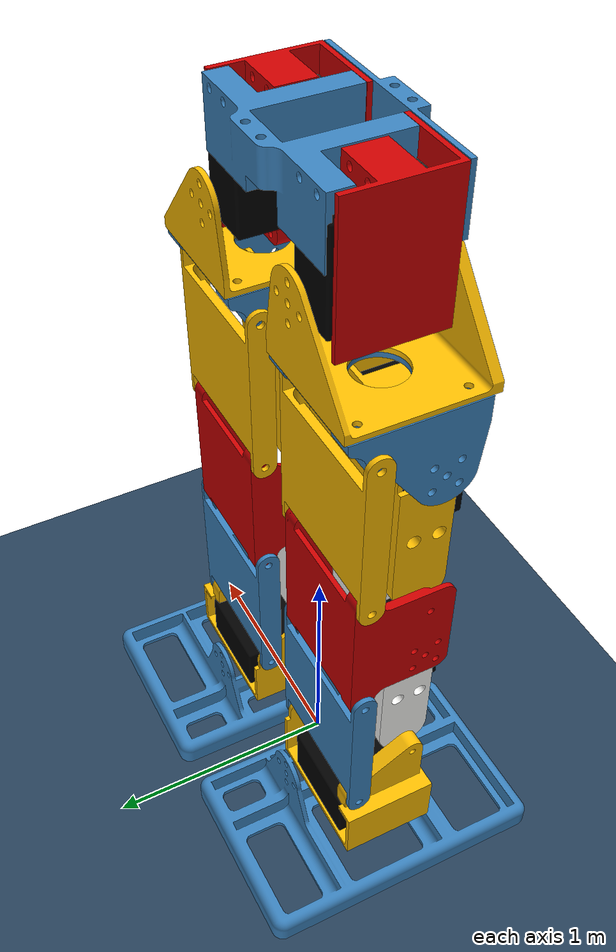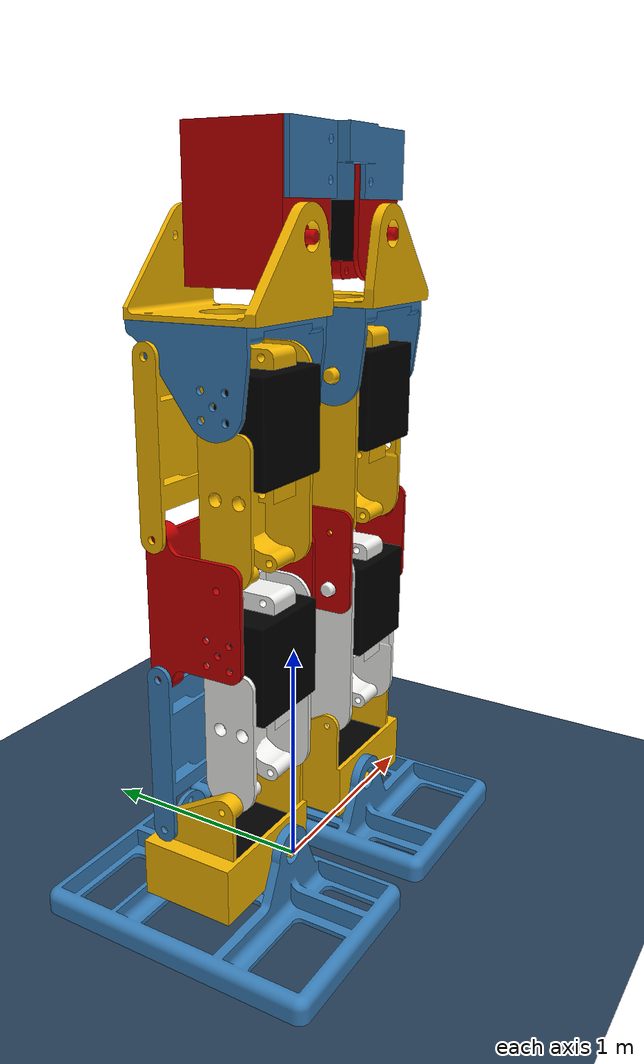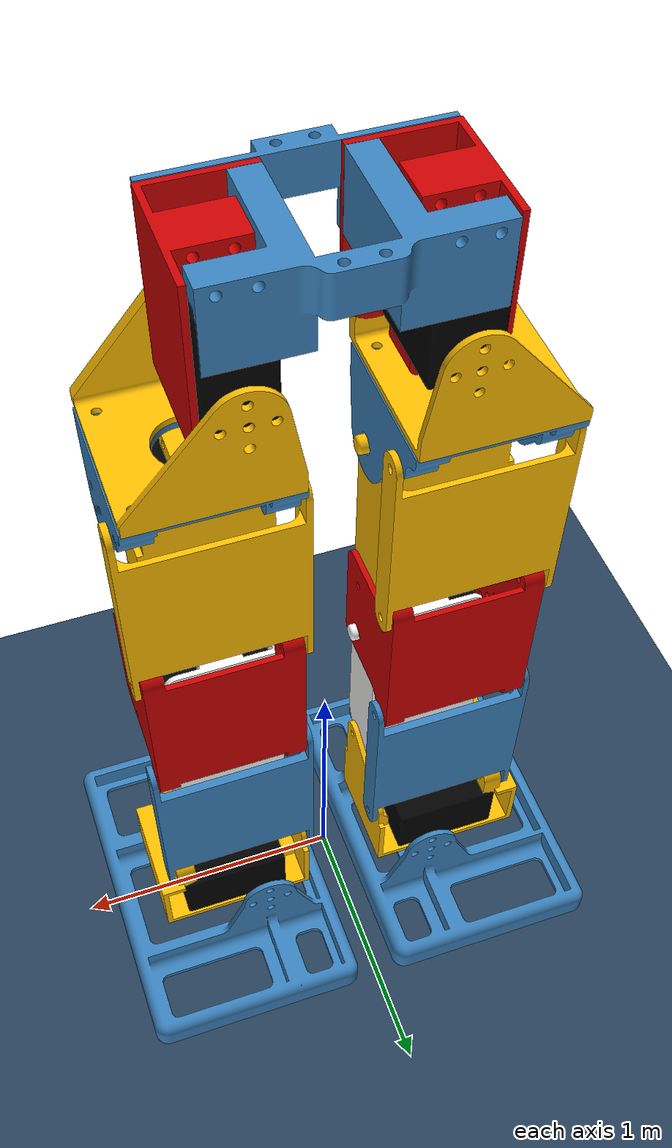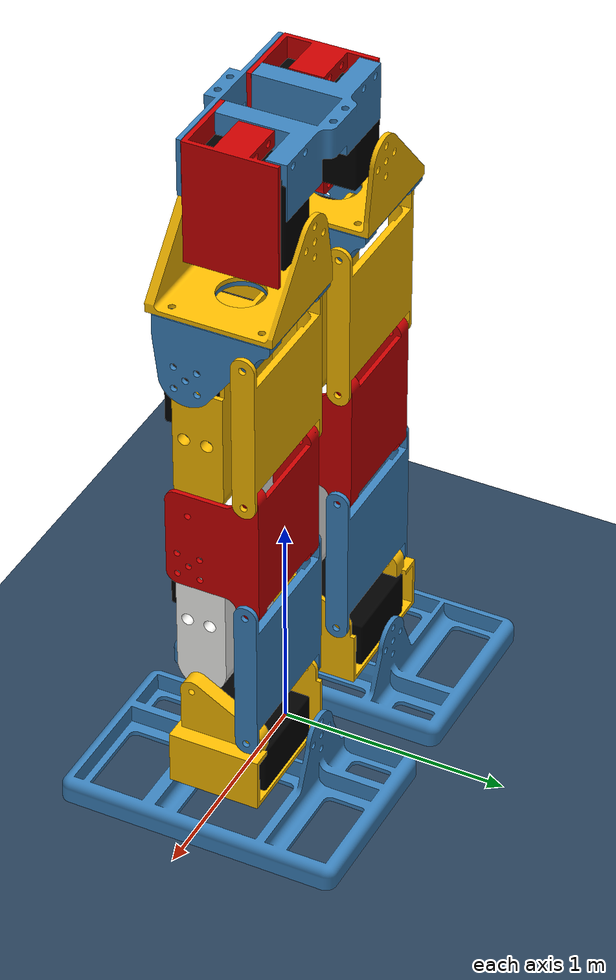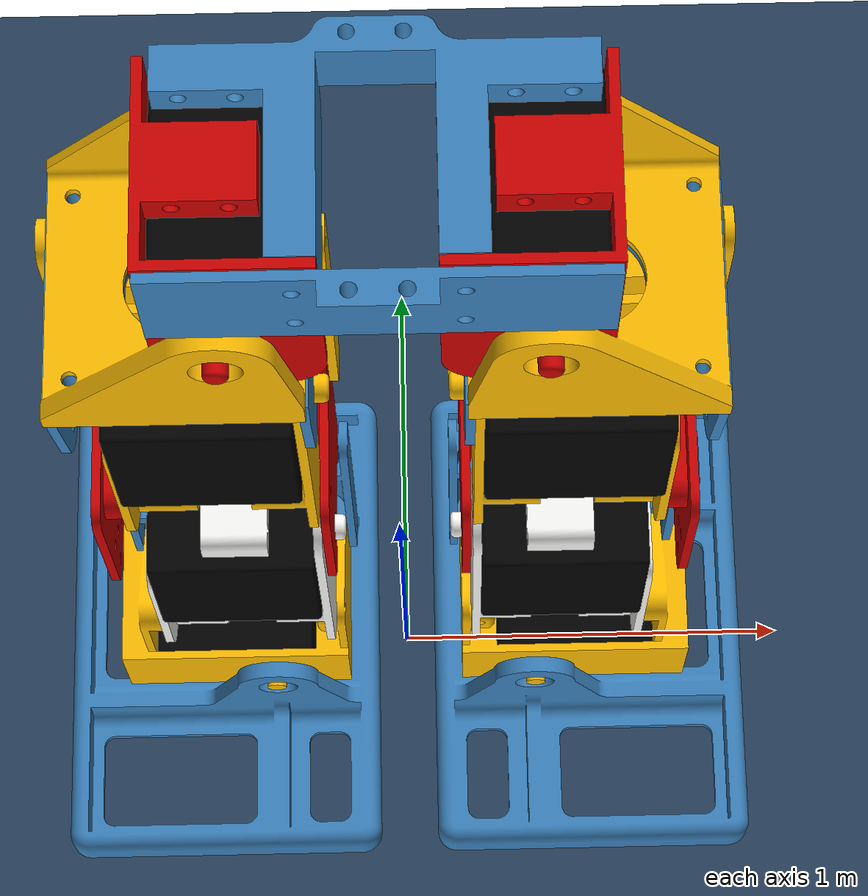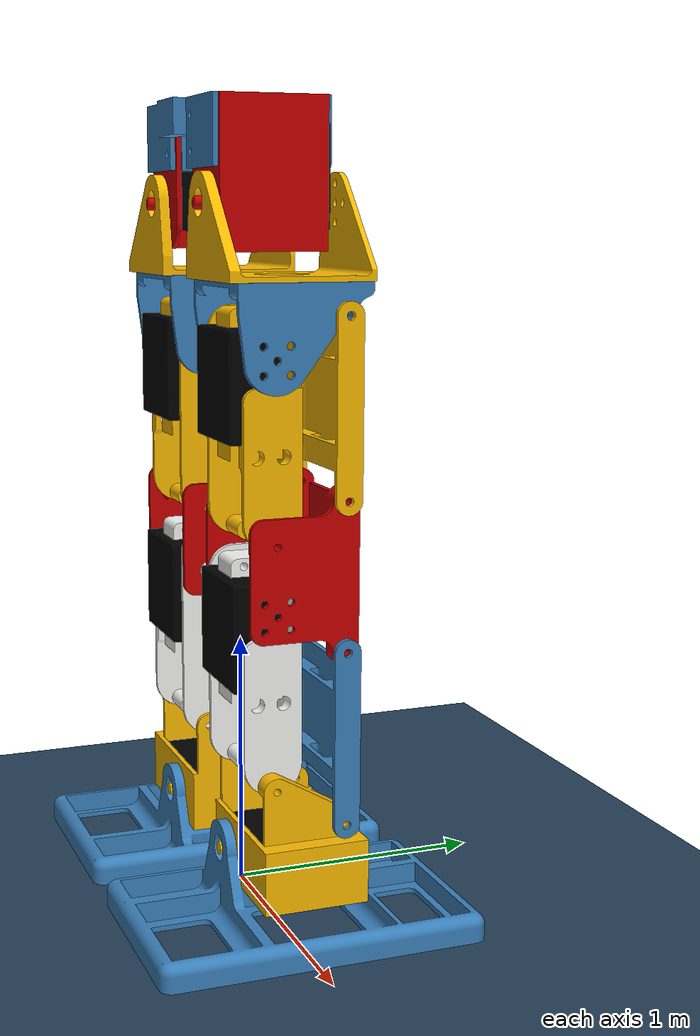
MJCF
<mujoco model="Kayra">
  <option gravity="0 0 -9.81"/>
   <compiler angle="degree"/>

<default>
  <mesh scale="0.01 0.01 0.01"/>
  <!--geom type="mesh" solref="0.005 1"/-->
  <!--position kp="21.1" ctrlrange="-3.141592 3.141592" forcerange="-5 5"/-->
  <joint armature="0.01" damping=".1" limited="true"/>
  <geom conaffinity="0" condim="3" contype="1" type="mesh" />

</default>

  <asset>
    <texture name="grid" type="2d" builtin="checker" width="512" height="512" rgb1=".1 .2 .3" rgb2=".2 .3 .4"/>
    <material name="blue" rgba="0.23 0.51 0.74 1"/>
    <material name="yellow" rgba="0.99 0.74 0.0 1"/>
    <material name="white" rgba="0.98 0.98 0.97 1"/>
	<material name="red" rgba="0.80 0.0 0.0 1"/>
    <material name="black" rgba="0.0 0.0 0.0 1"/>

    <material name="grid" texture="grid" texrepeat="1 1" texuniform="true" reflectance=".2"/>

    <mesh name="servoBlock" file="../STL/servoBlock-Body.stl"/>
    <mesh name="1R_foot" file="../STL/1R_foot_bearing-BodySketch.stl"/>
    <mesh name="1L_foot" file="../STL/1L_foot_bearing-BodySketch.stl"/>

    <mesh name="2R_footJoint" file="../STL/2R_footJoint_bearing-Body.stl"/>
    <mesh name="2L_footJoint" file="../STL/2L_footJoint_bearing-Body.stl"/>

    <mesh name="3BR_calf" file="../STL/3BR_calf-Body.stl"/>
    <mesh name="3BL_calf" file="../STL/3BL_calf-Body.stl"/>
    <mesh name="3FU_shin" file="../STL/3FU_shin-Body.stl"/>

    <mesh name="4R_knee" file="../STL/4R_knee-Body.stl"/>
    <mesh name="4L_knee" file="../STL/4L_knee-Body.stl"/>

	<mesh name="5R_hipjoint_lower" file="../STL/5R_hipjoint_lower-Body.stl"/>
	<mesh name="5L_hipjoint_lower" file="../STL/5L_hipjoint_lower-Body.stl"/>
    <mesh name="5R_hipjoint_upper" file="../STL/5R_hipjoint_upper_bearing-Body.stl"/>
    <mesh name="5L_hipjoint_upper" file="../STL/5L_hipjoint_upper_bearing-Body.stl"/>

    <mesh name="6F_hipfront" file="../STL/6F_hipfront-Body.stl"/>
	<mesh name="6F_hipback" file="../STL/6F_hipback-Body.stl"/>
	<mesh name="6R_hip" file="../STL/6R_hip_bearing-Body.stl"/>
	<mesh name="6L_hip" file="../STL/6L_hip_bearing-Body.stl"/>
  </asset>

  <worldbody>
   <camera name="follow" pos="-2.0 2.0 3" xyaxes="-1.0 -1 0 1.0 0 1" mode="trackcom"/>

    <light directional="true" pos="-0.5 0.5 3" dir="0 0 -1" />
    <geom name="floor" size="0 0 .05" type="plane" material="grid" conaffinity="1" condim="3"/>

    <body name="6Hip_Link" pos="-0.0 0.0 2.975" euler= "90 0.0 0.0">
        <joint type="free"/>

        <!--inertial pos="0 0 0.1" mass="0.10" diaginertia="0.005 0.005 0.005"/-->
        <geom mesh="6F_hipfront" type="mesh" pos="0.0 -0.043 -0.215" euler="90 180.0 180.0" material="blue" conaffinity="2"/>
        <geom mesh="6F_hipback" type="mesh" pos="0.0 -0.043 0.215" euler="90 180.0 180" material="blue" conaffinity="2"/>
        <geom mesh="6R_hip" type="mesh" pos="-0.425 -0.19 -0.001" euler="0.0 90 -90" material="red" conaffinity="2"/>
		<geom mesh="servoBlock" type="mesh" euler="90 0 90" pos="-0.3 -0.01 -0.01" mass="67.0" material="black" conaffinity="2"/>
		<geom mesh="6L_hip" type="mesh" pos="0.425 -0.19 -0.001" euler="0.0 90 -90" material="red" conaffinity="2"/>
		<geom mesh="servoBlock" type="mesh" euler="90 0 90" pos="0.3 -0.01 -0.01" mass="67.0" material="black" conaffinity="2"/>

		<body name="5R_Link" pos="-0.735 -0.525 -0.195" euler= "0 0 0">
			<joint name="5R_Joint" axis="0 0 -1" range="-180 180" pos="0.43 0.235 0.18"/>

			<!--inertial pos="0 0 0.1" mass="0.10" diaginertia="0.005 0.005 0.005"/-->
			<geom mesh="5R_hipjoint_upper" type="mesh" euler= "0.0 0 -0.0" pos="0.33 -0.015 0.17" material="yellow" conaffinity="3"/>
			<geom mesh="5R_hipjoint_lower" type="mesh" euler= "90.0 180 -0.0" pos="0.33 -0.055 0.17"  material="blue" conaffinity="3"/>

			<body name="3BRU_Link" pos="0.25 -0.39 0.17" euler="0.0 0 -90">
				<joint name="3BRU_Joint" axis="0 -1 0" range="-180 180" pos="-0.09 0.1 0.11"/>

				<!--inertial pos="0 0 0" mass="0.10" diaginertia="0.005 0.005 0.005"/-->
				<geom mesh="3BR_calf" type="mesh" euler="0 0 180" pos="0.1125 0.105 -0.01" material="yellow" conaffinity="3"/>
				<geom mesh="servoBlock" type="mesh" euler="90 0 0" pos="0.01 0.295 0.15" mass="67.0" material="black" conaffinity="3"/>

				<body name="4R_Link" pos="0.675 0.0 -0.18" euler= "0.0 -90 90">
					<joint name="4R_Joint" axis="-1 0 0" range="-180 180" pos="-0.10 -0.31 0.13"/>

					<!--inertial pos="0 0 0.1" mass="0.10" diaginertia="0.005 0.005 0.005"/-->
					<geom mesh="4R_knee" type="mesh" material="red" pos="0.08 0.02 -0.01" euler="0 180 0" conaffinity="3"/>

					<body name="3BR_Link" pos="0 -0.17 -0.225" euler="90 0 -90">
						<joint name="3BR_Joint" axis="0 -1 0" range="-180 180" pos="-0.10 -0.06 0.14"/>

						<!--inertial pos="0 0 0" mass="0.10" diaginertia="0.005 0.005 0.005"/-->
						<geom mesh="3BR_calf" type="mesh" euler="0 0 180" pos="0.112 0.105 0.0" material="white" conaffinity="3"/>
						<geom mesh="servoBlock" type="mesh" euler="90 0 0" pos="0.01 0.295 0.15" material="black" conaffinity="3"/>

						<body name="2R_Link" pos="1.0 -0.3 0.2" euler= "0 -90 90">
							<joint name="2R_Joint" axis="-1 0 0" range="-180 180" pos="0.23 0.05 0.45"/>

							<!--inertial pos="0 0 0.1" mass="0.05" diaginertia="0.005 0.005 0.005"/-->
							<geom mesh="2R_footJoint" type="mesh" pos="0.075 0.01 0.0" material="yellow" conaffinity="3"/>
							<geom mesh="servoBlock" type="mesh" euler="90 0 0" pos="0.345 0.40 0.12" material="black" conaffinity="3"/>

							<body name="3FUR_Link" pos="0.3 0.35 0.62" euler="-90 0 0">
								<joint name="3FUR_Joint" axis="-1 0 0" range="-180 180" pos="-0.03 0.33 -0.02"/>

								<!--nertial pos="0 0 0" mass="0.05" diaginertia="0.005 0.005 0.005"/-->
								<geom mesh="3FU_shin" type="mesh" euler="90 0 90" pos="0.08 0.005 -0.25" material="blue" conaffinity="3"/>
							</body>

							<body name="1R_Link" pos="0.3 0.2 -0.15" euler="0 0 0.0">
								<joint name="1R_Joint" axis="0 1 0" range="-180 180" pos="0.15 -0.07 0.27"/>
								<!--inertial pos="0 0 0" mass="0.05" diaginertia="0.005 0.005 0.005"/-->
								<geom mesh="1R_foot" type="mesh" euler="0 0 0" pos="0.0 0.0 0.0" material="blue" conaffinity="3"/>
							</body>
						</body>

					</body>

					<body name="3FURU_Link" pos="0.0 -0.020 0.60" euler="-90 0 0">
						<joint name="3FURU_Joint" axis="-1 0 0" range="-180 180" pos="-0.04 0.325 -0.03"/>

						<inertial pos="0 0 0" mass="0.05" diaginertia="0.005 0.005 0.005"/>
						<geom mesh="3FU_shin" type="mesh" euler="90 0 90" pos="0.08 0.0095 -0.25" material="yellow" conaffinity="3"/>
					</body>

				</body>

			</body>
		</body>

		<body name="5L_Link" pos="0.735 -0.525 -0.195" euler= "0 0.0 -0.0">
			<joint name="5L_Joint" axis="0 0 -1" range="-180 180" pos="-0.43 0.235 0.18"/>

			<!--inertial pos="0 0 0.1" mass="0.10" diaginertia="0.005 0.005 0.005"/-->
			<geom mesh="5L_hipjoint_upper" type="mesh" pos="-0.33 -0.015 0.17" euler= "0.0 0 -0.0" material="yellow" conaffinity="4"/>
			<geom mesh="5L_hipjoint_lower" type="mesh" pos="-0.33 -0.055 0.17"  euler= "90.0 180 -0.0" material="blue" conaffinity="4"/>

			<body name="3BLU_Link" pos="-0.25 -0.39 0.17" euler="0.0 0 -90">
				<joint name="3BLU_Joint" axis="0 1 0" range="-180 180" pos="-0.09 -0.1 0.11"/>

				<!--inertial pos="0 0 0" mass="0.10" diaginertia="0.005 0.005 0.005"/-->
				<geom mesh="3BL_calf" type="mesh" euler="180 180 0" pos="0.1125 -0.105 -0.01" material="yellow" conaffinity="4"/>
				<geom mesh="servoBlock" type="mesh" euler="90 0 0" pos="0.01 0.085 0.15" mass="67.0" material="black" conaffinity="4"/>

				<body name="4L_Link" pos="0.675 0 -0.18" euler= "0.0 -90 90">
					<joint name="4L_Joint" axis="1 0 0" range="-180 180" pos="0.1 -0.31 0.13"/>

					<!--inertial pos="0 0 0.1" mass="0.10" diaginertia="0.005 0.005 0.005"/-->
					<geom mesh="4L_knee" type="mesh" material="red" pos="-0.08 0.02 -0.01" euler= "0.0 180 0" conaffinity="4"/>

					<body name="3BL_Link" pos="0 -0.17 -0.225" euler="90 0 -90">
						<joint name="3BL_Joint" axis="0 1 0" range="-180 180" pos="-0.10 0.06 0.14"/>

						<!--inertial pos="0 0 0" mass="0.10" diaginertia="0.005 0.005 0.005"/-->
						<geom mesh="3BL_calf" type="mesh" euler="0 0 180" pos="0.112 -0.105 0.0" material="white" conaffinity="4"/>
						<geom mesh="servoBlock" type="mesh" euler="90 0 0" pos="0.01 0.085 0.15" mass="67.0" material="black" conaffinity="4"/>

						<body name="2L_Link" pos="1.0 0.3 0.2" euler= "0 -90 90">
							<joint name="2L_Joint" axis="1 0 0" range="-180 180" pos="-0.23 0.05 0.45"/>

							<!--inertial pos="0 0 0.1" mass="0.05" diaginertia="0.005 0.005 0.005"/-->
							<geom mesh="2L_footJoint" type="mesh" pos="-0.075 0.01 0.0" material="yellow" conaffinity="4"/>
							<geom mesh="servoBlock" type="mesh" euler="90 0 0" pos="-0.345 0.40 0.115" material="black" conaffinity="4"/>

							<body name="3FUL_Link" pos="-0.3 0.35 0.62" euler="-90 0 0">
								<joint name="3FUL_Joint" axis="1 0 0" range="-180 180" pos="0.03 0.33 -0.02"/>

								<!--inertial pos="0 0 0" mass="0.05" diaginertia="0.005 0.005 0.005"/-->
								<geom mesh="3FU_shin" type="mesh" euler="90 0 90" pos="-0.08 0.005 -0.25" material="blue" conaffinity="4"/>
							</body>

							<body name="1L_Link" pos="-0.3 0.2 -0.15" euler="0 0 0.0">
								<joint name="1L_Joint" axis="0 1 0" range="-180 180" pos="-0.15 -0.07 0.27"/>
								<!--inertial pos="0 0 0" mass="0.05" diaginertia="0.005 0.005 0.005"/-->
								<geom mesh="1L_foot" type="mesh" euler="0 0 0" pos="0.0 0.0 0.0" material="blue" conaffinity="4"/>
							</body>
						</body>

					</body>

					<body name="3FULU_Link" pos="0.0 -0.020 0.60" euler="-90 0 0">
						<joint name="3FULU_Joint" axis="1 0 0" range="-180 180" pos="0.04 0.325 -0.03"/>

						<!--inertial pos="0 0 0" mass="0.05" diaginertia="0.005 0.005 0.005"/-->
						<geom mesh="3FU_shin" type="mesh" euler="90 0 90" pos="-0.08 0.0095 -0.25" material="yellow" conaffinity="4"/>
					</body>
				</body>
			</body>
		</body>

    </body>

  </worldbody>

    <equality>
        <connect name="lowerRightLeg_kinematic_link" active="true" body1="4R_Link" body2="3FUR_Link" anchor="0.34 -0.03 -0.29"/>
        <connect name="lowerLeftLeg_kinematic_link" active="true" body1="4L_Link" body2="3FUL_Link" anchor="-0.34 -0.03 -0.29"/>

		<connect name="upperRightLeg_kinematic_link" active="true" body1="5R_Link" body2="3FURU_Link" anchor="0.58 -0.15 0.02"/>
		<connect name="upperLeftLeg_kinematic_link" active="true" body1="5L_Link" body2="3FULU_Link" anchor="-0.58 -0.15 0.02"/>
    </equality >

	<actuator>
		<position name="Right Hip Joint 5R" joint="5R_Joint"/>
		<position name="Right Upper Calf 3BRU" joint="3BRU_Joint"/>
		<position name="Right Lower Calf 3BR" joint="3BR_Joint"/>
		<position name="Right Foot 1R" joint="1R_Joint"/>

		<position name="Left Hip Joint 5L" joint="5L_Joint"/>
		<position name="Left Upper Calf 3BLU" joint="3BLU_Joint"/>
        <position name="Left Lower Calf 3BL" joint="3BL_Joint"/>
		<position name="Left Foot 1L" joint="1L_Joint"/>
	</actuator>

</mujoco>
